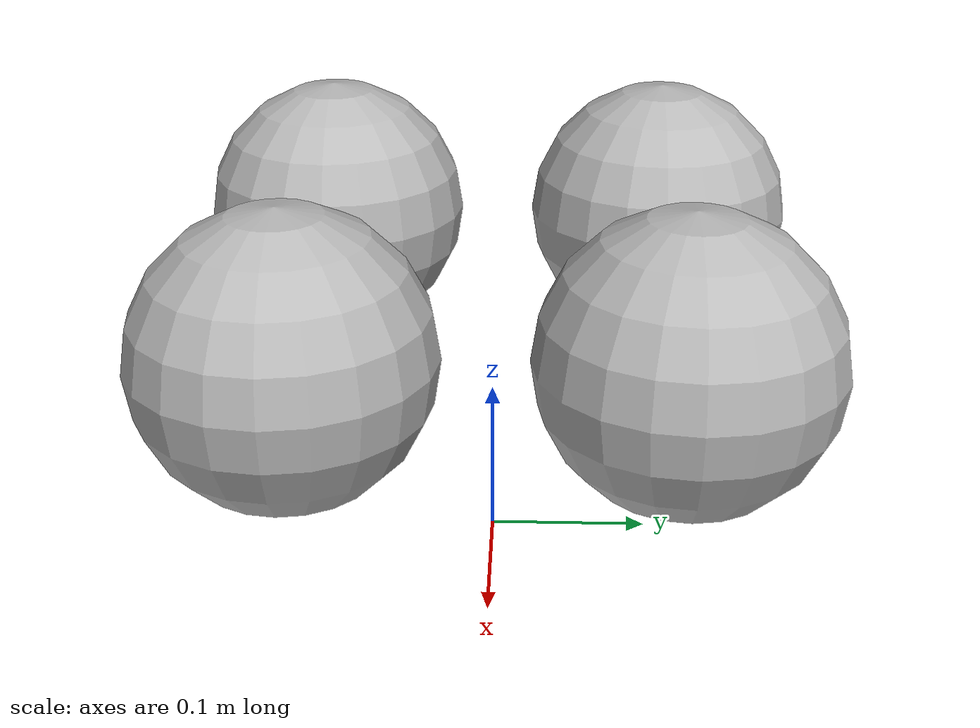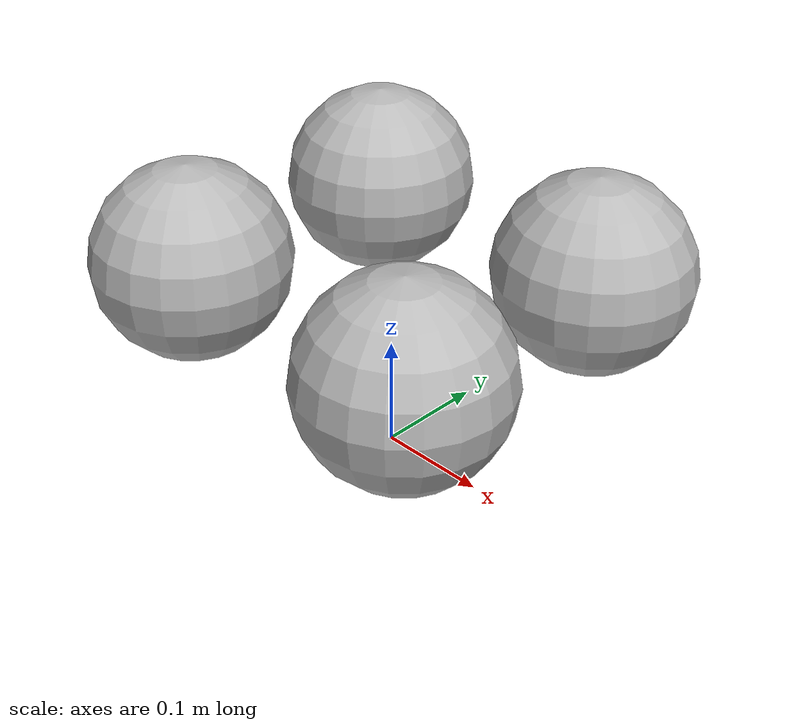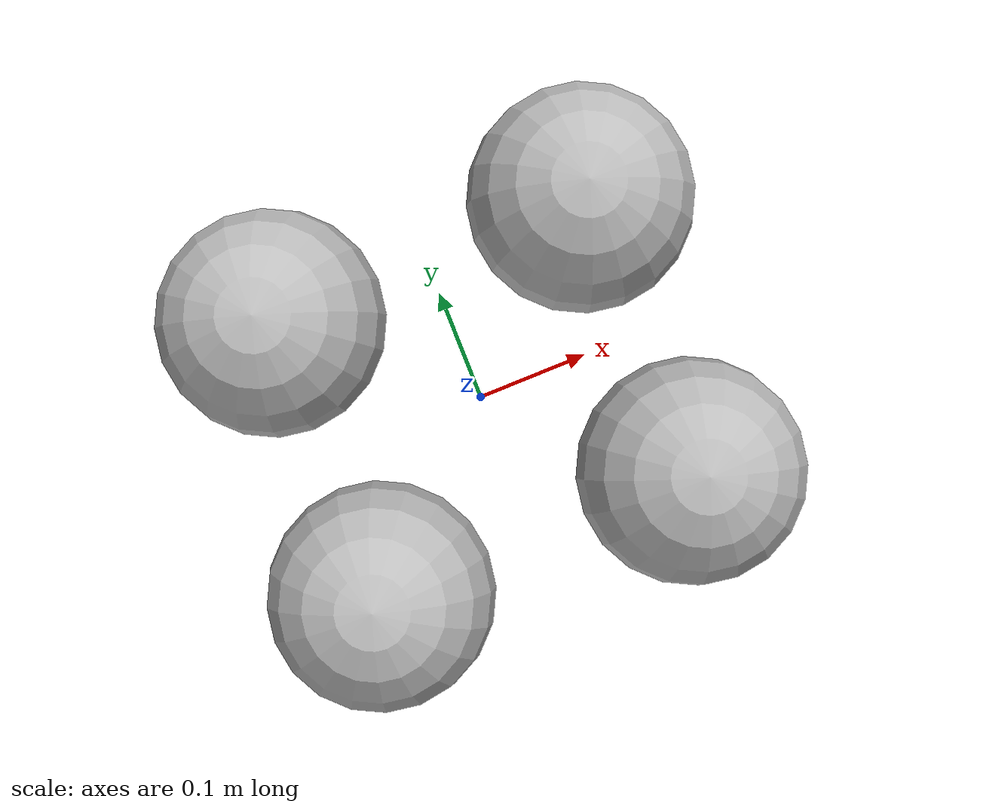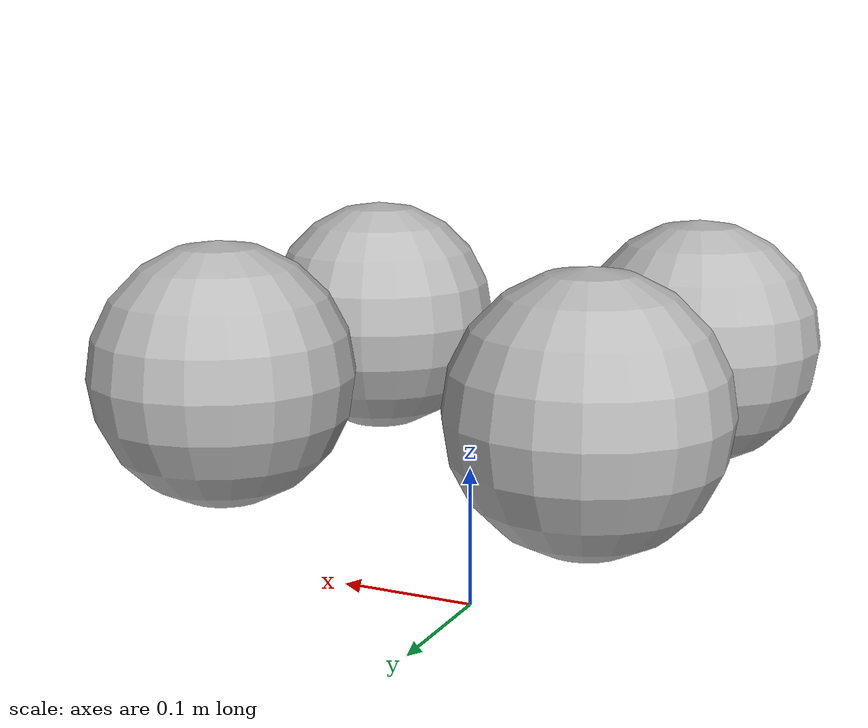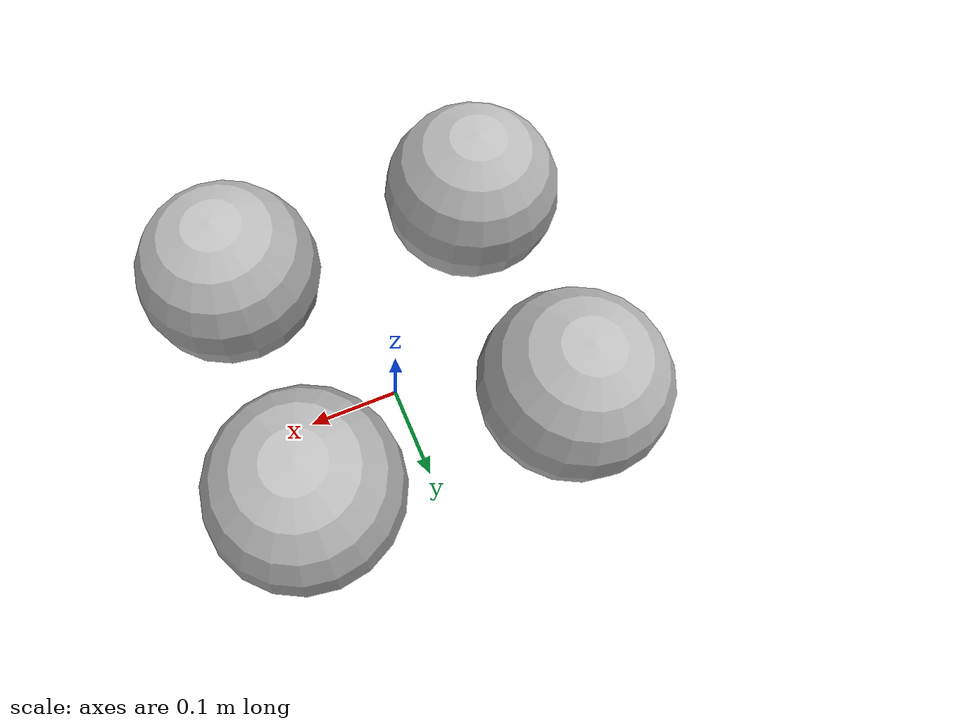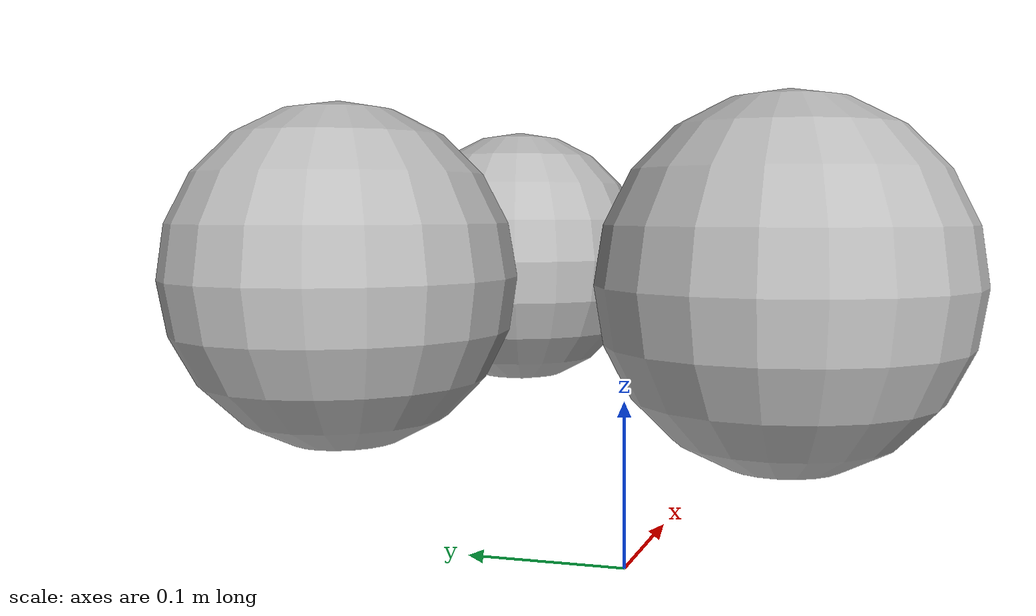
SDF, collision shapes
<?xml version='1.0'?>
<sdf version='1.5'>
  <model name='BlueRov2'>
    <pose>0 0 0 0 0 0</pose>
    <link name='base_link'>
      <inertial>
        <mass>11</mass>
        <inertia>
          <ixx>1</ixx>
          <ixy>0</ixy>
          <ixz>0</ixz>
          <iyy>1</iyy>
          <iyz>0</iyz>
          <izz>1</izz>
        </inertia>
      </inertial>
      <visual name='base_link_visual'>
        <geometry>
          <mesh>
            <scale>0.1 0.1 0.1</scale>
            <uri>meshes/BlueRov2.stl</uri>
          </mesh>
        </geometry>
      </visual>
      <collision name='buoyancy_tank_1'>
        <pose>0.12585 0.111 0.1789 0 0 0</pose>
        <geometry>
          <sphere>
            <radius>0.0869</radius> <!-- Adjust to get ~0.2525 compensation -->
          </sphere>
        </geometry>
      </collision>

      <collision name='buoyancy_tank_2'>
        <pose>-0.12585 0.111 0.1789 0 0 0</pose>
        <geometry>
          <sphere>
            <radius>0.0869</radius>
          </sphere>
        </geometry>
      </collision>

      <collision name='buoyancy_tank_3'>
        <pose>-0.12585 -0.111 0.1789 0 0 0</pose>
        <geometry>
          <sphere>
            <radius>0.0869</radius>
          </sphere>
        </geometry>
      </collision>

      <collision name='buoyancy_tank_4'>
        <pose>0.12585 -0.111 0.1789 0 0 0</pose>
        <geometry>
          <sphere>
            <radius>0.0869</radius>
          </sphere>
        </geometry>
      </collision>
      <sensor name="imu_sensor" type="imu">
        <pose>0 0 0 0 0 0</pose>
        <always_on>1</always_on>
        <update_rate>1000.0</update_rate>
      </sensor>
    </link>

    <link name='thruster1'>
      <pose>0.12 -0.11 0 1.5707963 1.5707963 -0.78539815</pose>
      <inertial>
        <mass>1e-10</mass>
        <inertia>
          <ixx>1</ixx>
          <ixy>0</ixy>
          <ixz>0</ixz>
          <iyy>1</iyy>
          <iyz>0</iyz>
          <izz>1</izz>
        </inertia>
      </inertial>
    </link>
    <joint name='thruster1_joint' type='fixed'>
      <parent>base_link</parent>
      <child>thruster1</child>
    </joint>

    <link name='thruster2'>
      <pose>0.12 0.11 0 1.5707963 1.5707963 3.92699075</pose>
      <inertial>
        <mass>1e-10</mass>
        <inertia>
          <ixx>1</ixx>
          <ixy>0</ixy>
          <ixz>0</ixz>
          <iyy>1</iyy>
          <iyz>0</iyz>
          <izz>1</izz>
        </inertia>
      </inertial>
    </link>
    <joint name='thruster2_joint' type='fixed'>
      <parent>base_link</parent>
      <child>thruster2</child>
      <axis>
        <xyz>0 0 1</xyz>
        <use_parent_model_frame>1</use_parent_model_frame>
      </axis>
    </joint>

    <link name='thruster3'>
      <pose>-0.12 -0.11 0 1.5707963 1.5707963 0.78540075</pose>
      <inertial>
        <mass>1e-10</mass>
        <inertia>
          <ixx>1</ixx>
          <ixy>0</ixy>
          <ixz>0</ixz>
          <iyy>1</iyy>
          <iyz>0</iyz>
          <izz>1</izz>
        </inertia>
      </inertial>
    </link>
    <joint name='thruster3_joint' type='fixed'>
      <parent>base_link</parent>
      <child>thruster3</child>
      <axis>
        <xyz>0 0 1</xyz>
        <use_parent_model_frame>1</use_parent_model_frame>
      </axis>
    </joint>

    <link name='thruster4'>
      <pose>-0.12 0.11 0 1.5707963 1.5707963 2.35619445</pose>
      <inertial>
        <mass>1e-10</mass>
        <inertia>
          <ixx>1</ixx>
          <ixy>0</ixy>
          <ixz>0</ixz>
          <iyy>1</iyy>
          <iyz>0</iyz>
          <izz>1</izz>
        </inertia>
      </inertial>
    </link>
    <joint name='thruster4_joint' type='fixed'>
      <parent>base_link</parent>
      <child>thruster4</child>
      <axis>
        <xyz>0 0 -1</xyz>
        <use_parent_model_frame>1</use_parent_model_frame>
      </axis>
    </joint>

    <link name='thruster5'>
      <pose>0 -0.11 0 3.1415926 0 0</pose>
      <inertial>
        <mass>1e-10</mass>
        <inertia>
          <ixx>1</ixx>
          <ixy>0</ixy>
          <ixz>0</ixz>
          <iyy>1</iyy>
          <iyz>0</iyz>
          <izz>1</izz>
        </inertia>
      </inertial>
    </link>
    <joint name='thruster5_joint' type='fixed'>
      <parent>base_link</parent>
      <child>thruster5</child>
      <axis>
        <xyz>0 -1 0</xyz>
        <use_parent_model_frame>1</use_parent_model_frame>
      </axis>
    </joint>

    <link name='thruster6'>
      <pose>0 0.11 0 3.1415926 0 0</pose>
      <inertial>
        <mass>1e-10</mass>
        <inertia>
          <ixx>1</ixx>
          <ixy>0</ixy>
          <ixz>0</ixz>
          <iyy>1</iyy>
          <iyz>0</iyz>
          <izz>1</izz>
        </inertia>
      </inertial>
    </link>
    <joint name='thruster6_joint' type='fixed'>
      <parent>base_link</parent>
      <child>thruster6</child>
      <axis>
        <xyz>0 1 0</xyz>
        <use_parent_model_frame>1</use_parent_model_frame>
      </axis>
    </joint>

    <plugin
      filename="ignition-gazebo-hydrodynamics-system"
      name="ignition::gazebo::systems::Hydrodynamics">
      <link_name>base_link</link_name>
    </plugin>

  </model>
</sdf>
